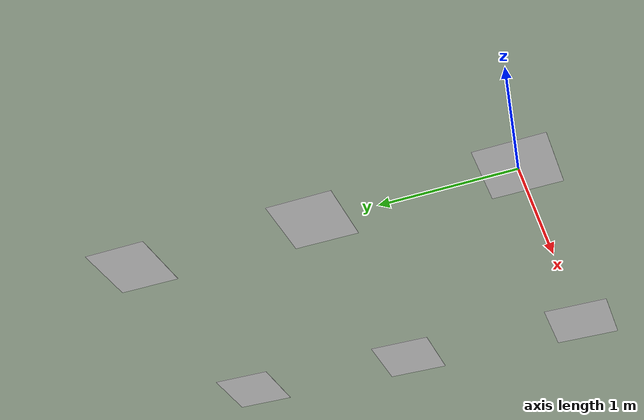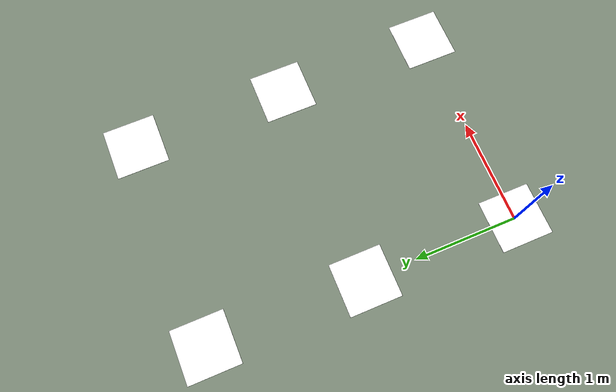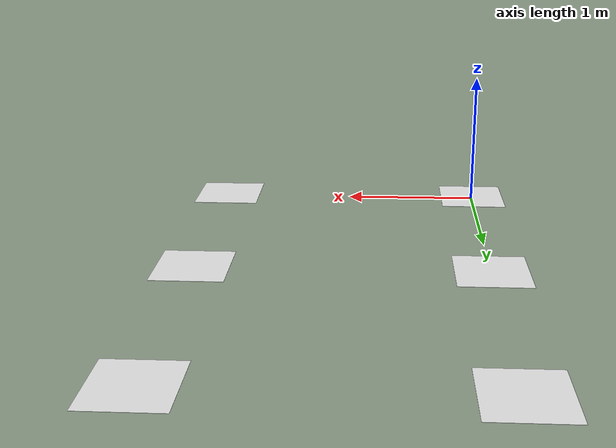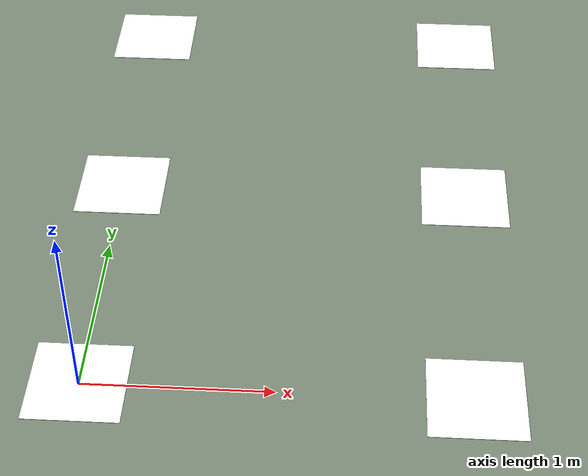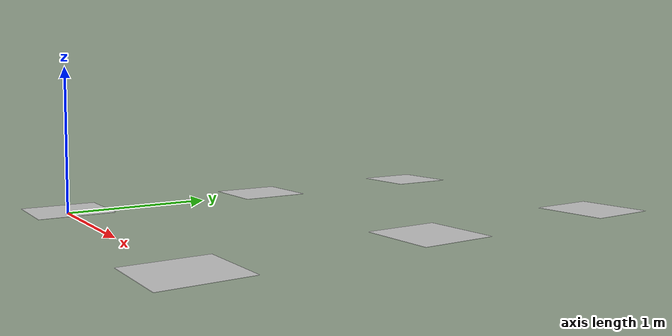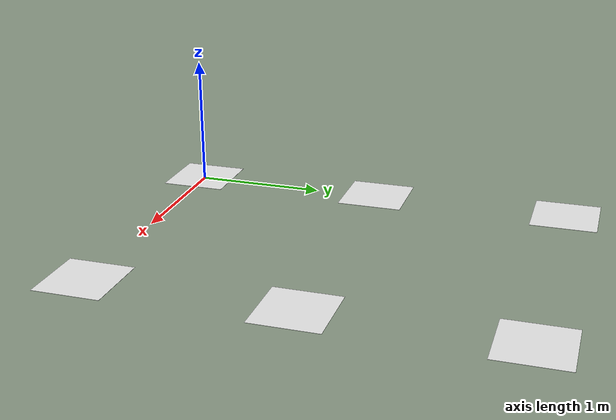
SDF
<?xml version="1.0" encoding="UTF-8"?>
<sdf version="1.9">
  <model name="apriltag_tags">
    <static>true</static>
    <pose>0 0 0.02 0 0 0</pose> <!-- Sits on top of the granite ground-->
    <link name="base">

      <!-- First row -->
      <visual name="tag0">
        <pose>0 0 0 0 0 0</pose>
        <geometry><box><size>0.5 0.5 0.002</size></box></geometry>
        <material>
          <diffuse>1 1 1 1</diffuse>
          <pbr><metal>
            <albedo_map>model://apriltag_tags/materials/textures/tag36_11_00000.png</albedo_map>
            <metalness>0.0</metalness><roughness>0.9</roughness>
          </metal></pbr>
        </material>
      </visual>
      <visual name="tag1">
        <pose>0 1.5 0 0 0 0</pose>
        <geometry><box><size>0.5 0.5 0.002</size></box></geometry>
        <material>
          <diffuse>1 1 1 1</diffuse>
          <pbr><metal>
            <albedo_map>model://apriltag_tags/materials/textures/tag36_11_00001.png</albedo_map>
            <metalness>0.0</metalness><roughness>0.9</roughness>
          </metal></pbr>
        </material>
      </visual>
      <visual name="tag2">
        <pose>0 3.0 0 0 0 0</pose>
        <geometry><box><size>0.5 0.5 0.002</size></box></geometry>
        <material>
          <diffuse>1 1 1 1</diffuse>
          <pbr><metal>
            <albedo_map>model://apriltag_tags/materials/textures/tag36_11_00002.png</albedo_map>
            <metalness>0.0</metalness><roughness>0.9</roughness>
          </metal></pbr>
        </material>
      </visual>

      <!-- Second row -->
      <visual name="tag3">
        <pose>2 0 0 0 0 0</pose>
        <geometry><box><size>0.5 0.5 0.002</size></box></geometry>
        <material>
          <diffuse>1 1 1 1</diffuse>
          <pbr><metal>
            <albedo_map>model://apriltag_tags/materials/textures/tag36_11_00003.png</albedo_map>
            <metalness>0.0</metalness><roughness>0.9</roughness>
          </metal></pbr>
        </material>
      </visual>
      <visual name="tag4">
        <pose>2 1.5 0 0 0 0</pose>
        <geometry><box><size>0.5 0.5 0.002</size></box></geometry>
        <material>
          <diffuse>1 1 1 1</diffuse>
          <pbr><metal>
            <albedo_map>model://apriltag_tags/materials/textures/tag36_11_00004.png</albedo_map>
            <metalness>0.0</metalness><roughness>0.9</roughness>
          </metal></pbr>
        </material>
      </visual>
      <visual name="tag5">
        <pose>2 3.0 0 0 0 0</pose>
        <geometry><box><size>0.5 0.5 0.002</size></box></geometry>
        <material>
          <diffuse>1 1 1 1</diffuse>
          <pbr><metal>
            <albedo_map>model://apriltag_tags/materials/textures/tag36_11_00005.png</albedo_map>
            <metalness>0.0</metalness><roughness>0.9</roughness>
          </metal></pbr>
        </material>
      </visual>
    </link>
  </model>
</sdf>
